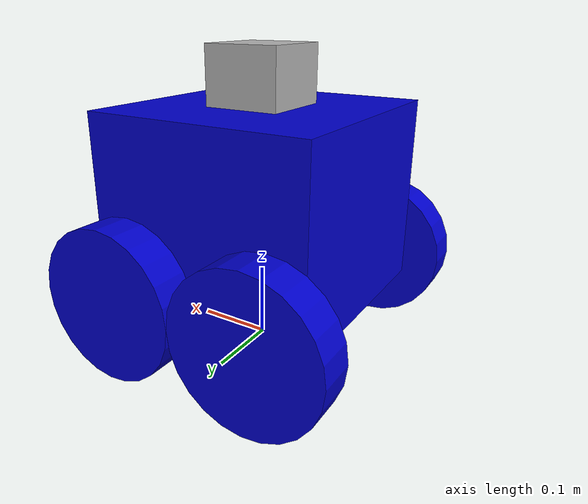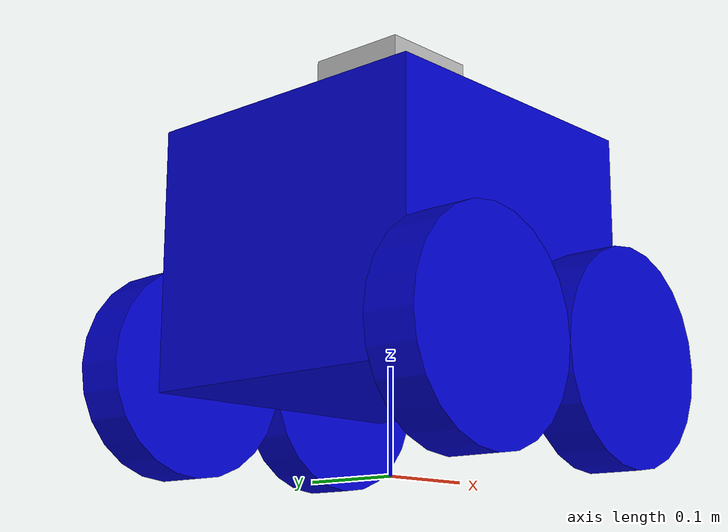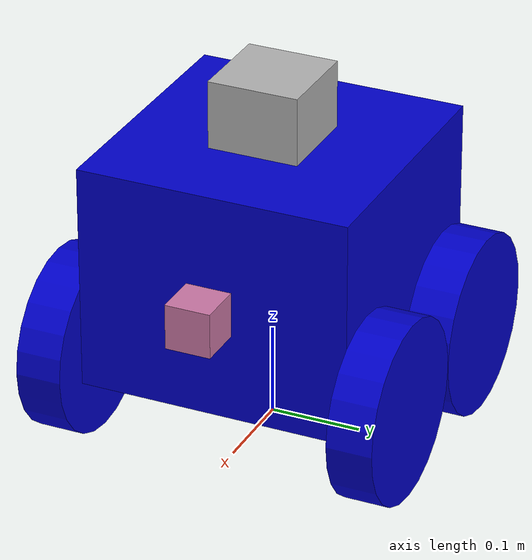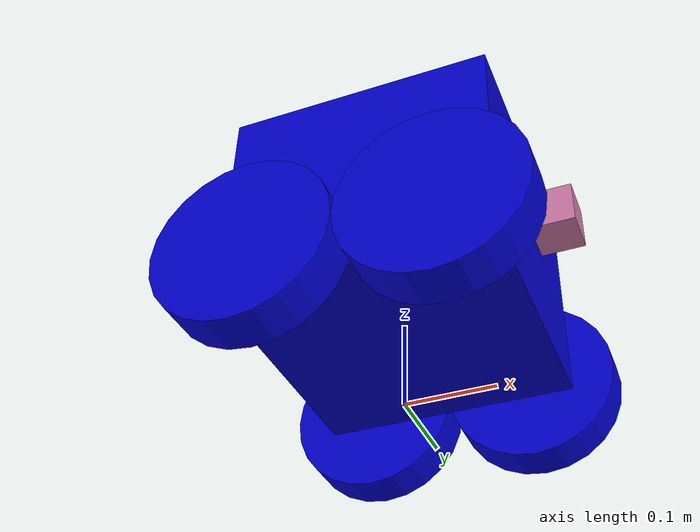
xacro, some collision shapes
<?xml version='1.0'?>
<robot name="drive_robot" xmlns:xacro="http://www.ros.org/wiki/xacro">
  <xacro:include filename="$(find drive_robot)/urdf/drive_robot.gazebo"/>
  <material name="blue">
    <color rgba="0 0 0.8 1"/>
  </material>
  <link name="robot_footprint"/>
  <joint name="robot_footprint_joint" type="fixed">
    <origin rpy="0 0 0" xyz="0 0 0.2"/>
    <parent link="robot_footprint"/>
    <child link="chassis"/>
  </joint>
  <!-- creating main chassis -->
  <link name="chassis">
    <pose>0 0 0.1 0 0 0</pose>
    <inertial>
      <mass value="15.0"/>
      <origin rpy=" 0 0 0" xyz="0.0 0 0"/>
      <inertia ixx="0.1" ixy="0" ixz="0" iyy="0.1" iyz="0" izz="0.1"/>
    </inertial>
    <collision name="collision">
      <origin rpy=" 0 0 0" xyz="0 0 0"/>
      <geometry>
        <box size=".3 .3 .25"/>
      </geometry>
    </collision>
    <visual name="chassis_visual">
      <origin rpy=" 0 0 0" xyz="0 0 0"/>
      <geometry>
        <box size=".3 .3 .25"/>
      </geometry>
      <material name="blue"/>
    </visual>
  </link>
  <!-- creating left wheel -->
  <link name="left_back_wheel">
    <visual name="left_back_wheel_visual">
      <origin rpy=" 0 1.5707 1.5707" xyz="0 0 0"/>
      <geometry>
        <cylinder length="0.05" radius="0.0999"/>
      </geometry>
      <material name="blue"/>
    </visual>
    <collision name="left_back_wheel_collision">
      <origin rpy=" 0 1.5707 1.5707" xyz="0 0 0"/>
      <geometry>
        <cylinder length="0.05" radius="0.0999"/>
      </geometry>
    </collision>
    <inertial>
      <mass value="5.0"/>
      <origin rpy=" 0 1.5707 1.5707" xyz="0.0 0 0"/>
      <inertia ixx="0.1" ixy="0" ixz="0" iyy="0.1" iyz="0" izz="0.1"/>
    </inertial>
  </link>
  <joint name="left_back_wheel_hinge" type="continuous">
    <origin rpy="0 0 0" xyz="-0.1 0.175 -0.10"/>
    <child link="left_back_wheel"/>
    <parent link="chassis"/>
    <axis rpy="0 0 0" xyz="0 1 0"/>
    <limit effort="10000" velocity="1000"/>
    <joint_properties damping="1.0" friction="1.0"/>
  </joint>
  <!-- creating right wheel -->
  <link name="right_back_wheel">
    <visual name="right_back_wheel_visual">
      <origin rpy=" 0 1.5707 1.5707" xyz="0 0 0"/>
      <geometry>
        <cylinder length="0.05" radius="0.0999"/>
      </geometry>
      <material name="blue"/>
    </visual>
    <collision name="right_back_wheel_collision">
      <origin rpy=" 0 1.5707 1.5707" xyz="0 0 0"/>
      <geometry>
        <cylinder length="0.05" radius="0.0999"/>
      </geometry>
    </collision>
    <inertial>
      <mass value="5.0"/>
      <origin rpy=" 0 1.5707 1.5707" xyz="0.0 0 0"/>
      <inertia ixx="0.1" ixy="0" ixz="0" iyy="0.1" iyz="0" izz="0.1"/>
    </inertial>
  </link>
  <joint name="right_back_wheel_hinge" type="continuous">
    <origin rpy="0 0 0" xyz="-0.1 -0.175 -0.10"/>
    <child link="right_back_wheel"/>
    <parent link="chassis"/>
    <axis rpy="0 0 0" xyz="0 1 0"/>
    <limit effort="10000" velocity="1000"/>
    <joint_properties damping="1.0" friction="1.0"/>
  </joint>
  <!-- creating left wheel -->
  <link name="left_front_wheel">
    <visual name="left_front_wheel_visual">
      <origin rpy=" 0 1.5707 1.5707" xyz="0 0 0"/>
      <geometry>
        <cylinder length="0.05" radius="0.0999"/>
      </geometry>
      <material name="blue"/>
    </visual>
    <collision name="left_front_wheel_collision">
      <origin rpy=" 0 1.5707 1.5707" xyz="0 0 0"/>
      <geometry>
        <cylinder length="0.05" radius="0.0999"/>
      </geometry>
    </collision>
    <inertial>
      <mass value="5.0"/>
      <origin rpy=" 0 1.5707 1.5707" xyz="0.0 0 0"/>
      <inertia ixx="0.1" ixy="0" ixz="0" iyy="0.1" iyz="0" izz="0.1"/>
    </inertial>
  </link>
  <joint name="left_front_wheel_hinge" type="continuous">
    <origin rpy="0 0 0" xyz="0.1 0.175 -0.10"/>
    <child link="left_front_wheel"/>
    <parent link="chassis"/>
    <axis rpy="0 0 0" xyz="0 1 0"/>
    <limit effort="10000" velocity="1000"/>
    <joint_properties damping="1.0" friction="1.0"/>
  </joint>
  <!-- creating right wheel -->
  <link name="right_front_wheel">
    <visual name="right_front_wheel_visual">
      <origin rpy=" 0 1.5707 1.5707" xyz="0 0 0"/>
      <geometry>
        <cylinder length="0.05" radius="0.0999"/>
      </geometry>
      <material name="blue"/>
    </visual>
    <collision name="right_front_wheel_collision">
      <origin rpy=" 0 1.5707 1.5707" xyz="0 0 0"/>
      <geometry>
        <cylinder length="0.05" radius="0.0999"/>
      </geometry>
    </collision>
    <inertial>
      <mass value="5.0"/>
      <origin rpy=" 0 1.5707 1.5707" xyz="0.0 0 0"/>
      <inertia ixx="0.1" ixy="0" ixz="0" iyy="0.1" iyz="0" izz="0.1"/>
    </inertial>
  </link>
  <joint name="right_front_wheel_hinge" type="continuous">
    <origin rpy="0 0 0" xyz="0.1 -0.175 -0.10"/>
    <child link="right_front_wheel"/>
    <parent link="chassis"/>
    <axis rpy="0 0 0" xyz="0 1 0"/>
    <limit effort="10000" velocity="1000"/>
    <joint_properties damping="1.0" friction="1.0"/>
  </joint>
  <!-- creating camera -->
  <link name="camera">
    <collision name="camera_collision">
      <origin rpy=" 0 0 0" xyz="0 0 0"/>
      <geometry>
        <box size="0.05 0.05 0.05"/>
      </geometry>
    </collision>
    <inertial>
      <mass value="0.1"/>
      <origin rpy=" 0 0 0" xyz="0 0 0"/>
      <inertia ixx="1e-6" ixy="0" ixz="0" iyy="1e-6" iyz="0" izz="1e-6"/>
    </inertial>
    <visual name="camera_visual">
      <origin rpy=" 0 0 0" xyz="0 0 0"/>
      <geometry>
        <box size="0.05 0.05 0.05"/>
      </geometry>
    </visual>
  </link>
  <joint name="camera_joint" type="fixed">
    <origin rpy="0 0 0" xyz="0.180 0 0"/>
    <child link="camera"/>
    <parent link="chassis"/>
    <axis rpy="0 0 0" xyz="1 0 0"/>
  </joint>
  <!-- creating hokuyo -->
  <link name="hokuyo">
    <collision name="hokuyo_collision">
      <origin rpy=" 0 0 0" xyz="0 0 0"/>
      <geometry>
        <box size="0.1 0.1 0.1"/>
      </geometry>
    </collision>
    <inertial>
      <mass value="0.1"/>
      <origin rpy=" 0 0 0" xyz="0 0 0"/>
      <inertia ixx="1e-6" ixy="0" ixz="0" iyy="1e-6" iyz="0" izz="1e-6"/>
    </inertial>
    <visual name="hokuyo_visual">
      <origin rpy=" 0 0 0" xyz="0 0 0"/>
      <geometry>
        <mesh filename="package://drive_robot/meshes/hokuyo.dae"/>
      </geometry>
    </visual>
  </link>
  <joint name="hokuyo_joint" type="fixed">
    <origin rpy="0 0 0" xyz="0 0 0.15"/>
    <child link="hokuyo"/>
    <parent link="chassis"/>
    <axis rpy="0 0 0" xyz="1 0 0"/>
  </joint>
</robot>
